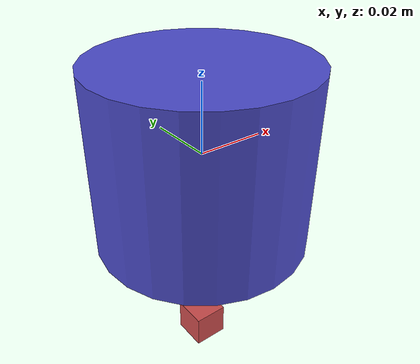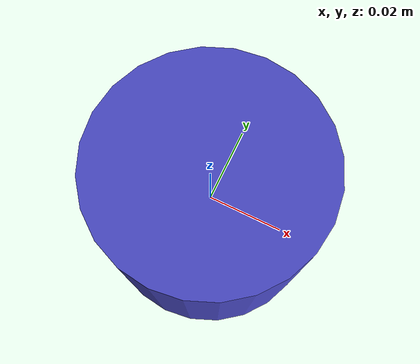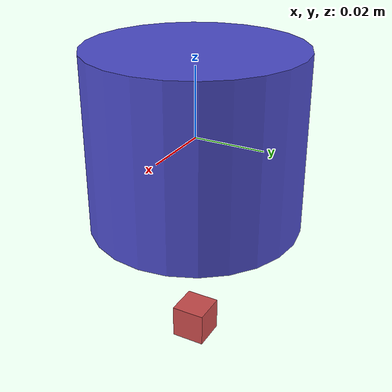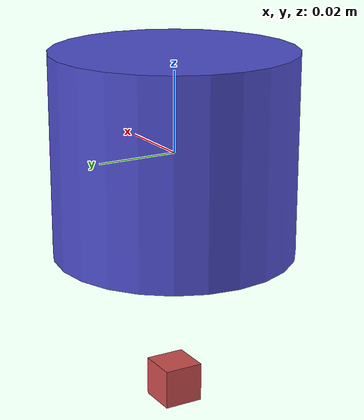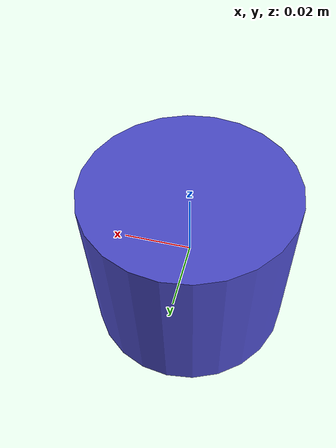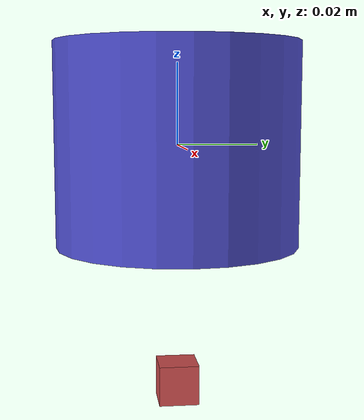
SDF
<?xml version='1.0'?>
<sdf version="1.6">
  <model name="simple_laser_imu">

    <link name="laser_link">
      <pose>0 0 0 0 0 0</pose>
      <inertial>
        <mass>0.1</mass>
        <inertia>
          <ixx>0.0001</ixx>
          <ixy>0.0</ixy>
          <ixz>0.0</ixz>
          <iyy>0.0001</iyy>
          <iyz>0.0</iyz>
          <izz>0.0001</izz>
        </inertia>
      </inertial>

      <visual name="laser_visual">
        <geometry>
          <cylinder>
            <radius>0.03</radius>
            <length>0.05</length>
          </cylinder>
        </geometry>
        <material>
          <ambient>0.2 0.2 0.8 1</ambient>
          <diffuse>0.3 0.3 0.8 1</diffuse>
        </material>
      </visual>

      <collision name="laser_collision">
        <geometry>
          <cylinder>
            <radius>0.03</radius>
            <length>0.05</length>
          </cylinder>
        </geometry>
      </collision>

      <sensor type="ray" name="laser_sensor">
        <pose>0 0 0 0 0 0</pose>
        <always_on>true</always_on>
        <update_rate>10</update_rate>
        <visualize>true</visualize>

        <ray>
          <scan>
            <horizontal>
              <samples>720</samples>
              <resolution>1</resolution>
              <min_angle>-3.141592653589793</min_angle>
              <max_angle>3.141592653589793</max_angle>
            </horizontal>
          </scan>
          <range>
            <min>0.12</min>
            <max>8.0</max>
            <resolution>0.01</resolution>
          </range>
          <noise>
            <type>gaussian</type>
            <mean>0.0</mean>
            <stddev>0.01</stddev>
          </noise>
        </ray>

        <plugin name="gazebo_ros_laser_controller" filename="libgazebo_ros_laser.so">
          <topicName>/laser/scan</topicName>
          <frameName>laser_link</frameName>
        </plugin>
      </sensor>
    </link>

    ---

    <link name="imu_link">
      <pose>0 0 -0.06 0 0 0</pose>
      <inertial>
        <mass>0.01</mass>
        <inertia>
          <ixx>1e-6</ixx>
          <ixy>0.0</ixy>
          <ixz>0.0</ixz>
          <iyy>1e-6</iyy>
          <iyz>0.0</iyz>
          <izz>1e-6</izz>
        </inertia>
      </inertial>

      <visual name="imu_visual">
        <geometry>
          <box>
            <size>0.01 0.01 0.01</size>
          </box>
        </geometry>
        <material>
          <ambient>0.8 0.2 0.2 1</ambient>
          <diffuse>0.8 0.3 0.3 1</diffuse>
        </material>
      </visual>

      <sensor name="imu_sensor" type="imu">
        <pose>0 0 0 0 0 0</pose>
        <always_on>true</always_on>
        <update_rate>200</update_rate>
        <visualize>true</visualize>
        <topic>__default_topic__</topic>

        <plugin filename="libgazebo_ros_imu_sensor.so" name="imu_plugin">
          <topicName>/laser/imu</topicName>
          <bodyName>imu_link</bodyName>
          <updateRateHZ>200.0</updateRateHZ>
          <gaussianNoise>0.0</gaussianNoise>
          <xyzOffset>0 0 0</xyzOffset>
          <rpyOffset>0 0 0</rpyOffset>
          <frameName>imu_link</frameName>
        </plugin>
      </sensor>
    </link>

    ---

    <joint name="laser_imu_joint" type="fixed">
      <parent>laser_link</parent>
      <child>imu_link</child>
      <pose>0 0 -0.06 0 0 0</pose>
    </joint>

    <static>false</static>
  </model>
</sdf>
